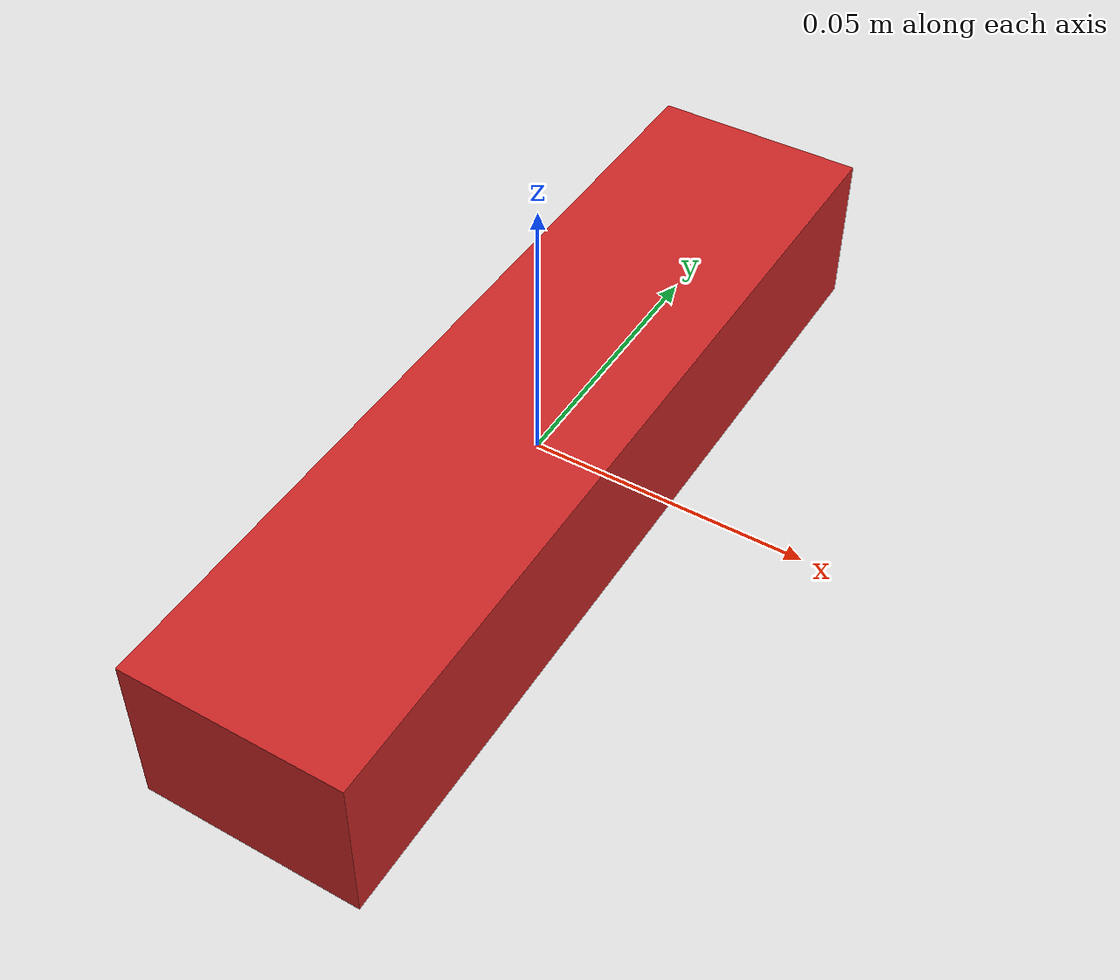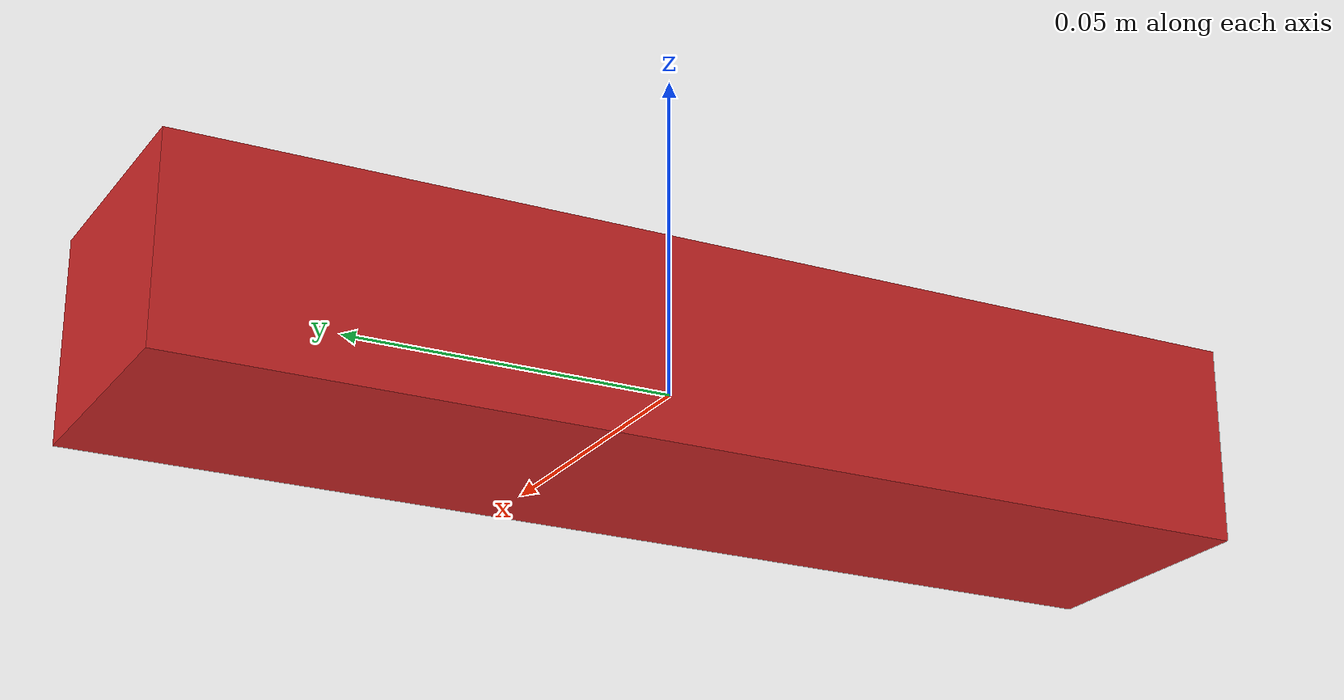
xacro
<?xml version="1.0"?>

<robot name="multirotor" xmlns:xacro="http://ros.org/wiki/xacro">

  <!-- Properties -->
  <xacro:arg name="mav_name" default="multirotor"/>
  <xacro:arg name="color" default="White"/>

  <xacro:property name="namespace" value="$(arg mav_name)" />
  <xacro:property name="use_mesh_file" value="true" />
  <xacro:property name="mesh_file" value="model://quadrotor/meshes/quadrotor_base.dae" />
  <xacro:property name="mass" value="1.4" />
  <xacro:property name="body_width" value="0.4" />
  <xacro:property name="body_height" value="0.225" />
  <xacro:property name="body_inertia">
    <inertia ixx="0.07" ixy="0.0" ixz="0.0" iyy="0.08" iyz="0.0" izz="0.12" />
  </xacro:property>
  <xacro:property name="color" value="$(arg color)" />

  <!-- *********************** GAZEBO ROBOT DEFINITION ******************* -->

  <!-- Camera -->
  <link name="camera_link">
    <collision>
      <origin xyz="0 0 0" rpy="0 0 0"/>
      <geometry>
    <box size="0.04 0.165 0.03"/>
      </geometry>
    </collision>

    <visual>
      <origin xyz="0 0 0" rpy="0 0 0"/>
      <geometry>
    <box size="0.04 0.165 0.03"/>
      </geometry>
      <material name="Red"/>
    </visual>

    <inertial>
      <mass value="0.1" />
      <origin xyz="0 0 0" rpy="0 0 0"/>
      <inertia ixx="0.000226875" ixy="0" ixz="0" iyy="0.000234375" iyz="0" izz="0.000240208" />
    </inertial>
  </link>

  <!-- quad -->
  <gazebo reference="${namespace}/base_link">
    <material>Gazebo/${color}</material>
  </gazebo>

  <!-- camera -->
  <gazebo reference="camera_link">
    <turnGravityOff>true</turnGravityOff>
    <material>Gazebo/Red</material>
    <sensor type="camera" name="camera">
      <update_rate>30.0</update_rate>
      <camera name="head">
        <horizontal_fov>1.3962634</horizontal_fov>
        <image>
          <width>640</width>
          <height>480</height>
          <format>R8G8B8</format>
        </image>
        <clip>
          <near>0.02</near>
          <far>300</far>
        </clip>
      </camera>
      <plugin name="camera_controller" filename="libgazebo_ros_camera.so">
        <alwaysOn>true</alwaysOn>
        <updateRate>0.0</updateRate>
        <cameraName>camera</cameraName>
        <imageTopicName>image_raw</imageTopicName>
        <cameraInfoTopicName>camera_info</cameraInfoTopicName>
        <frameName>camera_link</frameName>
        <focal_length>600</focal_length>
        <Cx>320.5</Cx>
        <Cy>240.5</Cy>
        <hackBaseline>0.07</hackBaseline>
        <distortionK1>0.0</distortionK1>
        <distortionK2>0.0</distortionK2>
        <distortionK3>0.0</distortionK3>
        <distortionT1>0.0</distortionT1>
        <distortionT2>0.0</distortionT2>
      </plugin>
    </sensor>
  </gazebo>

  <!-- ROSflight SIL Plugin -->
  <xacro:include filename="$(find rosflight_sim)/xacro/rosflight_sil.xacro"/>
  <xacro:generic_multirotor namespace="${namespace}" parent_link="${namespace}/base_link"/>

</robot>
